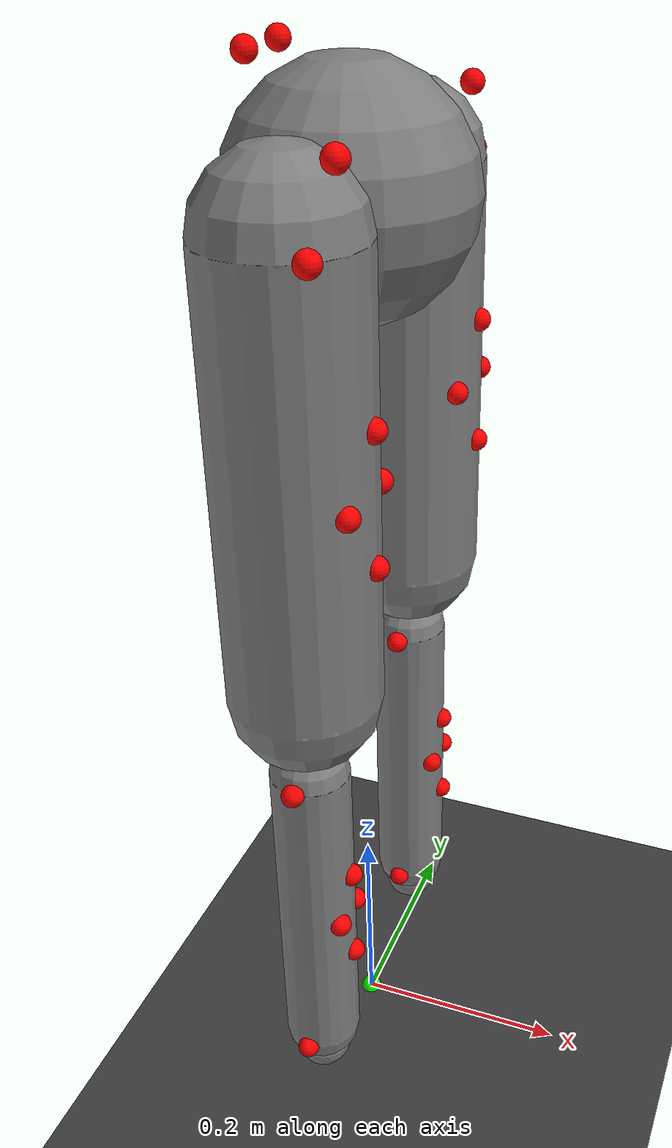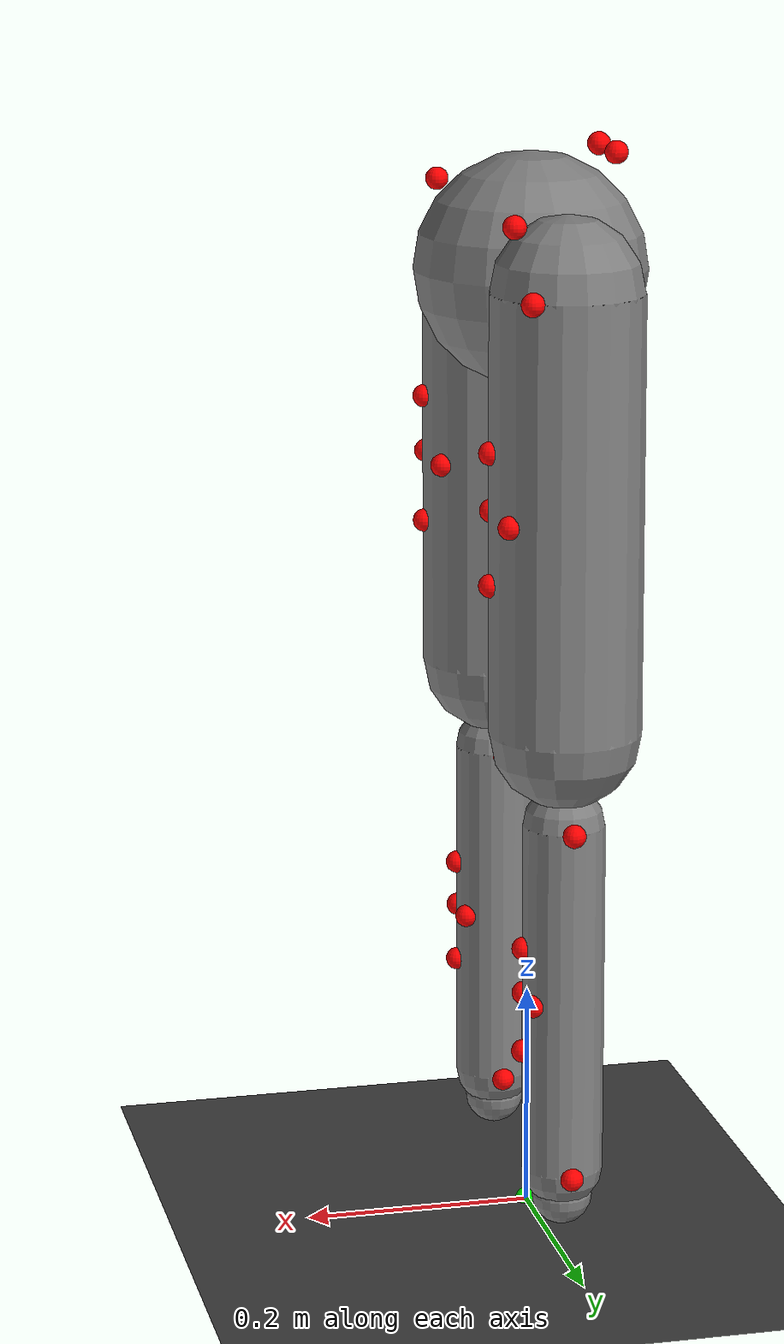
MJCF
<mujoco model="pm_mll">
  <compiler settotalmass="50.0"/>
  <default>
    <default class="/"/>
    <default class="left_leg/"/>
    <default class="right_leg/"/>
  </default>
  <asset>
    <texture name="texplane" type="2d" builtin="checker" rgb1="0.20000000000000001 0.20000000000000001 0.20000000000000001" rgb2="0.29999999999999999 0.29999999999999999 0.29999999999999999" width="512" height="512"/>
    <material name="grid" class="/" texture="texplane" texrepeat="1 1" texuniform="true" reflectance="0.0"/>
  </asset>
  <worldbody>
    <geom name="floor" class="/" type="plane" conaffinity="1" size="100 100 0.20000000000000001" material="grid" pos="0 0 0"/>
    <body name="torso" pos="0 0 0.84581186855799162">
      <light name="top" class="/" mode="trackcom" pos="0 0 2"/>
      <camera name="back" class="/" mode="trackcom" pos="-3 0 1" xyaxes="0 -1 0 1 0 2"/>
      <camera name="side" class="/" mode="trackcom" pos="0 -3 1" xyaxes="1 0 0 0 1 2"/>
      <joint armature="0" axis="1 0 0" damping="0" limited="false" name="rootx" pos="0 0 0" stiffness="0" type="slide"/>
      <joint armature="0" axis="0 0 1" damping="0" limited="false" name="rootz" pos="0 0 0" stiffness="0" type="slide"/>
      <joint armature="0" axis="0 1 0" damping="0" limited="false" name="rooty" pos="0 0 0" stiffness="0" type="hinge"/>
      <geom name="head" class="/" type="sphere" size="0.10000000000000001" pos="0 0 0"/>
      <site name="com" class="/" type="sphere" rgba="1 0 0 1" size="0.01" pos="0 0 0"/>
      <camera name="egocentric" class="/" fovy="80.0" pos="0.089999999999999997 0 0" xyaxes="0 -1 0 0.10000000000000001 1 2"/>
      <site name="RASI" class="/" type="sphere" rgba="1 0 0 1" size="0.01" pos="0.048943999880708008 -0.14004190747163026 0.057850884871788529"/>
      <site name="LASI" class="/" type="sphere" rgba="1 0 0 1" size="0.01" pos="0.048943999880708008 0.14004190747163026 0.057850884871788529"/>
      <site name="RPSI" class="/" type="sphere" rgba="1 0 0 1" size="0.01" pos="-0.066488008791476927 -0.028008381494326055 0.0996938565740315"/>
      <site name="LPSI" class="/" type="sphere" rgba="1 0 0 1" size="0.01" pos="-0.066488008791476927 0.028008381494326055 0.0996938565740315"/>
      <site name="left_leg_site" class="/" size="9.9999999999999995e-07 9.9999999999999995e-07 9.9999999999999995e-07" pos="0 0.12336127164775351 0"/>
      <body pos="0 0.12336127164775351 0" name="left_leg/">
        <body name="left_leg/thigh">
          <joint name="left_leg/hip_x" class="left_leg/" type="hinge" axis="1 0 0" limited="true" solimplimit="0 0.98999999999999999 0.01" range="-25 5"/>
          <joint name="left_leg/hip_y" class="left_leg/" type="hinge" axis="0 1 0" limited="true" solimplimit="0 0.98999999999999999 0.01" range="-110 20"/>
          <geom name="left_leg/thigh" class="left_leg/" type="capsule" size="0.064800587918351138" mass="1e-06" fromto="0 0 0 0 0 -0.37368460417967581"/>
          <site name="left_leg/LGT" class="left_leg/" type="sphere" rgba="1 0 0 1" size="0.01" pos="0.041653015014319367 0.049640130285695673 0"/>
          <site name="left_leg/LT1" class="left_leg/" type="sphere" rgba="1 0 0 1" size="0.01" pos="0.064800587918351138 0 -0.13078961146288653"/>
          <site name="left_leg/LT2" class="left_leg/" type="sphere" rgba="1 0 0 1" size="0.01" pos="0.056118955317459064 0.032400293959175562 -0.1868423020898379"/>
          <site name="left_leg/LT3" class="left_leg/" type="sphere" rgba="1 0 0 1" size="0.01" pos="0.064800587918351138 0 -0.24289499271678927"/>
          <site name="left_leg/LT4" class="left_leg/" type="sphere" rgba="1 0 0 1" size="0.01" pos="0.056118955317459064 -0.032400293959175562 -0.1868423020898379"/>
          <body name="left_leg/shin" pos="0 0 -0.45493333095078076">
            <joint name="left_leg/knee" class="left_leg/" type="hinge" pos="0 0 0.02" axis="0 -1 0" limited="true" solimplimit="0 0.98999999999999999 0.01" stiffness="0.0" range="-160 2" armature="0.01" damping="0.0"/>
            <geom name="left_leg/shin" class="left_leg/" type="capsule" size="0.035119856339967746" mass="1e-06" fromto="0 0 0 0 0 -0.30955686011002925"/>
            <site name="left_leg/LKNL" class="left_leg/" type="sphere" rgba="1 0 0 1" size="0.01" pos="2.1504709826628188e-18 0.035119856339967746 0"/>
            <site name="left_leg/LKNM" class="left_leg/" type="sphere" rgba="1 0 0 1" size="0.01" pos="-6.4514129479884569e-18 -0.035119856339967746 0"/>
            <site name="left_leg/LS1" class="left_leg/" type="sphere" rgba="1 0 0 1" size="0.01" pos="0.035119856339967746 0 -0.10834490103851024"/>
            <site name="left_leg/LS2" class="left_leg/" type="sphere" rgba="1 0 0 1" size="0.01" pos="0.030414687767672047 0.01755992816998387 -0.15477843005501463"/>
            <site name="left_leg/LS3" class="left_leg/" type="sphere" rgba="1 0 0 1" size="0.01" pos="0.035119856339967746 0 -0.20121195907151901"/>
            <site name="left_leg/LS4" class="left_leg/" type="sphere" rgba="1 0 0 1" size="0.01" pos="0.030414687767672047 -0.01755992816998387 -0.15477843005501463"/>
            <site name="left_leg/LANL" class="left_leg/" type="sphere" rgba="1 0 0 1" size="0.01" pos="2.1504709826628188e-18 0.035119856339967746 -0.30955686011002925"/>
            <site name="left_leg/LANM" class="left_leg/" type="sphere" rgba="1 0 0 1" size="0.01" pos="-6.4514129479884569e-18 -0.035119856339967746 -0.30955686011002925"/>
            <body name="left_leg/foot" pos="0 0 -0.33570141974336248">
              <geom name="left_leg/foot" class="left_leg/" type="sphere" size="0.026144559633333252" mass="0.1" pos="0 0 0"/>
              <site name="left_leg/foot" class="left_leg/" type="sphere" rgba="1 0 0 1" size="0.01" pos="0 0 0"/>
            </body>
          </body>
        </body>
      </body>
      <site name="right_leg_site" class="/" size="9.9999999999999995e-07 9.9999999999999995e-07 9.9999999999999995e-07" pos="0 -0.12336127164775351 0"/>
      <body pos="0 -0.12336127164775351 0" name="right_leg/">
        <body name="right_leg/thigh">
          <joint name="right_leg/hip_x" class="right_leg/" type="hinge" axis="1 0 0" limited="true" solimplimit="0 0.98999999999999999 0.01" range="-25 5"/>
          <joint name="right_leg/hip_y" class="right_leg/" type="hinge" axis="0 1 0" limited="true" solimplimit="0 0.98999999999999999 0.01" range="-110 20"/>
          <geom name="right_leg/thigh" class="right_leg/" type="capsule" size="0.064800587918351138" mass="1e-06" fromto="0 0 0 0 0 -0.37368460417967581"/>
          <site name="right_leg/RGT" class="right_leg/" type="sphere" rgba="1 0 0 1" size="0.01" pos="0.04165301501431936 -0.04964013028569568 0"/>
          <site name="right_leg/RT1" class="right_leg/" type="sphere" rgba="1 0 0 1" size="0.01" pos="0.064800587918351138 0 -0.13078961146288653"/>
          <site name="right_leg/RT2" class="right_leg/" type="sphere" rgba="1 0 0 1" size="0.01" pos="0.056118955317459064 0.032400293959175562 -0.1868423020898379"/>
          <site name="right_leg/RT3" class="right_leg/" type="sphere" rgba="1 0 0 1" size="0.01" pos="0.064800587918351138 0 -0.24289499271678927"/>
          <site name="right_leg/RT4" class="right_leg/" type="sphere" rgba="1 0 0 1" size="0.01" pos="0.056118955317459064 -0.032400293959175562 -0.1868423020898379"/>
          <body name="right_leg/shin" pos="0 0 -0.45493333095078076">
            <joint name="right_leg/knee" class="right_leg/" type="hinge" pos="0 0 0.02" axis="0 -1 0" limited="true" solimplimit="0 0.98999999999999999 0.01" stiffness="0.0" range="-160 2" armature="0.01" damping="0.0"/>
            <geom name="right_leg/shin" class="right_leg/" type="capsule" size="0.035119856339967746" mass="1e-06" fromto="0 0 0 0 0 -0.30955686011002925"/>
            <site name="right_leg/RKNL" class="right_leg/" type="sphere" rgba="1 0 0 1" size="0.01" pos="-6.4514129479884569e-18 -0.035119856339967746 0"/>
            <site name="right_leg/RKNM" class="right_leg/" type="sphere" rgba="1 0 0 1" size="0.01" pos="2.1504709826628188e-18 0.035119856339967746 0"/>
            <site name="right_leg/RS1" class="right_leg/" type="sphere" rgba="1 0 0 1" size="0.01" pos="0.035119856339967746 0 -0.10834490103851024"/>
            <site name="right_leg/RS2" class="right_leg/" type="sphere" rgba="1 0 0 1" size="0.01" pos="0.030414687767672047 0.01755992816998387 -0.15477843005501463"/>
            <site name="right_leg/RS3" class="right_leg/" type="sphere" rgba="1 0 0 1" size="0.01" pos="0.035119856339967746 0 -0.20121195907151901"/>
            <site name="right_leg/RS4" class="right_leg/" type="sphere" rgba="1 0 0 1" size="0.01" pos="0.030414687767672047 -0.01755992816998387 -0.15477843005501463"/>
            <site name="right_leg/RANL" class="right_leg/" type="sphere" rgba="1 0 0 1" size="0.01" pos="2.1504709826628188e-18 0.035119856339967746 -0.30955686011002925"/>
            <site name="right_leg/RANM" class="right_leg/" type="sphere" rgba="1 0 0 1" size="0.01" pos="-6.4514129479884569e-18 -0.035119856339967746 -0.30955686011002925"/>
            <body name="right_leg/foot" pos="0 0 -0.33570141974336248">
              <geom name="right_leg/foot" class="right_leg/" type="sphere" size="0.026144559633333252" mass="0.1" pos="0 0 0"/>
              <site name="right_leg/foot" class="right_leg/" type="sphere" rgba="1 0 0 1" size="0.01" pos="0 0 0"/>
            </body>
          </body>
        </body>
      </body>
    </body>
    <body name="m0" mocap="true" pos="0 0 0">
      <geom name="m0" class="/" type="sphere" size="0.01" rgba="0 1 0 1" mass="0.0"/>
    </body>
    <body name="m1" mocap="true" pos="0 0 0">
      <geom name="m1" class="/" type="sphere" size="0.01" rgba="0 1 0 1" mass="0.0"/>
    </body>
    <body name="m2" mocap="true" pos="0 0 0">
      <geom name="m2" class="/" type="sphere" size="0.01" rgba="0 1 0 1" mass="0.0"/>
    </body>
    <body name="m3" mocap="true" pos="0 0 0">
      <geom name="m3" class="/" type="sphere" size="0.01" rgba="0 1 0 1" mass="0.0"/>
    </body>
    <body name="m4" mocap="true" pos="0 0 0">
      <geom name="m4" class="/" type="sphere" size="0.01" rgba="0 1 0 1" mass="0.0"/>
    </body>
    <body name="m5" mocap="true" pos="0 0 0">
      <geom name="m5" class="/" type="sphere" size="0.01" rgba="0 1 0 1" mass="0.0"/>
    </body>
    <body name="m6" mocap="true" pos="0 0 0">
      <geom name="m6" class="/" type="sphere" size="0.01" rgba="0 1 0 1" mass="0.0"/>
    </body>
    <body name="m7" mocap="true" pos="0 0 0">
      <geom name="m7" class="/" type="sphere" size="0.01" rgba="0 1 0 1" mass="0.0"/>
    </body>
    <body name="m8" mocap="true" pos="0 0 0">
      <geom name="m8" class="/" type="sphere" size="0.01" rgba="0 1 0 1" mass="0.0"/>
    </body>
    <body name="m9" mocap="true" pos="0 0 0">
      <geom name="m9" class="/" type="sphere" size="0.01" rgba="0 1 0 1" mass="0.0"/>
    </body>
    <body name="m10" mocap="true" pos="0 0 0">
      <geom name="m10" class="/" type="sphere" size="0.01" rgba="0 1 0 1" mass="0.0"/>
    </body>
    <body name="m11" mocap="true" pos="0 0 0">
      <geom name="m11" class="/" type="sphere" size="0.01" rgba="0 1 0 1" mass="0.0"/>
    </body>
    <body name="m12" mocap="true" pos="0 0 0">
      <geom name="m12" class="/" type="sphere" size="0.01" rgba="0 1 0 1" mass="0.0"/>
    </body>
    <body name="m13" mocap="true" pos="0 0 0">
      <geom name="m13" class="/" type="sphere" size="0.01" rgba="0 1 0 1" mass="0.0"/>
    </body>
    <body name="m14" mocap="true" pos="0 0 0">
      <geom name="m14" class="/" type="sphere" size="0.01" rgba="0 1 0 1" mass="0.0"/>
    </body>
    <body name="m15" mocap="true" pos="0 0 0">
      <geom name="m15" class="/" type="sphere" size="0.01" rgba="0 1 0 1" mass="0.0"/>
    </body>
    <body name="m16" mocap="true" pos="0 0 0">
      <geom name="m16" class="/" type="sphere" size="0.01" rgba="0 1 0 1" mass="0.0"/>
    </body>
    <body name="m17" mocap="true" pos="0 0 0">
      <geom name="m17" class="/" type="sphere" size="0.01" rgba="0 1 0 1" mass="0.0"/>
    </body>
    <body name="m18" mocap="true" pos="0 0 0">
      <geom name="m18" class="/" type="sphere" size="0.01" rgba="0 1 0 1" mass="0.0"/>
    </body>
    <body name="m19" mocap="true" pos="0 0 0">
      <geom name="m19" class="/" type="sphere" size="0.01" rgba="0 1 0 1" mass="0.0"/>
    </body>
    <body name="m20" mocap="true" pos="0 0 0">
      <geom name="m20" class="/" type="sphere" size="0.01" rgba="0 1 0 1" mass="0.0"/>
    </body>
    <body name="m21" mocap="true" pos="0 0 0">
      <geom name="m21" class="/" type="sphere" size="0.01" rgba="0 1 0 1" mass="0.0"/>
    </body>
    <body name="m22" mocap="true" pos="0 0 0">
      <geom name="m22" class="/" type="sphere" size="0.01" rgba="0 1 0 1" mass="0.0"/>
    </body>
    <body name="m23" mocap="true" pos="0 0 0">
      <geom name="m23" class="/" type="sphere" size="0.01" rgba="0 1 0 1" mass="0.0"/>
    </body>
    <body name="m24" mocap="true" pos="0 0 0">
      <geom name="m24" class="/" type="sphere" size="0.01" rgba="0 1 0 1" mass="0.0"/>
    </body>
    <body name="m25" mocap="true" pos="0 0 0">
      <geom name="m25" class="/" type="sphere" size="0.01" rgba="0 1 0 1" mass="0.0"/>
    </body>
    <body name="m26" mocap="true" pos="0 0 0">
      <geom name="m26" class="/" type="sphere" size="0.01" rgba="0 1 0 1" mass="0.0"/>
    </body>
    <body name="m27" mocap="true" pos="0 0 0">
      <geom name="m27" class="/" type="sphere" size="0.01" rgba="0 1 0 1" mass="0.0"/>
    </body>
    <body name="m28" mocap="true" pos="0 0 0">
      <geom name="m28" class="/" type="sphere" size="0.01" rgba="0 1 0 1" mass="0.0"/>
    </body>
    <body name="m29" mocap="true" pos="0 0 0">
      <geom name="m29" class="/" type="sphere" size="0.01" rgba="0 1 0 1" mass="0.0"/>
    </body>
    <body name="m30" mocap="true" pos="0 0 0">
      <geom name="m30" class="/" type="sphere" size="0.01" rgba="0 1 0 1" mass="0.0"/>
    </body>
    <body name="m31" mocap="true" pos="0 0 0">
      <geom name="m31" class="/" type="sphere" size="0.01" rgba="0 1 0 1" mass="0.0"/>
    </body>
    <body name="m32" mocap="true" pos="0 0 0">
      <geom name="m32" class="/" type="sphere" size="0.01" rgba="0 1 0 1" mass="0.0"/>
    </body>
    <body name="m33" mocap="true" pos="0 0 0">
      <geom name="m33" class="/" type="sphere" size="0.01" rgba="0 1 0 1" mass="0.0"/>
    </body>
    <body name="m34" mocap="true" pos="0 0 0">
      <geom name="m34" class="/" type="sphere" size="0.01" rgba="0 1 0 1" mass="0.0"/>
    </body>
    <body name="m35" mocap="true" pos="0 0 0">
      <geom name="m35" class="/" type="sphere" size="0.01" rgba="0 1 0 1" mass="0.0"/>
    </body>
    <body name="m36" mocap="true" pos="0 0 0">
      <geom name="m36" class="/" type="sphere" size="0.01" rgba="0 1 0 1" mass="0.0"/>
    </body>
    <body name="m37" mocap="true" pos="0 0 0">
      <geom name="m37" class="/" type="sphere" size="0.01" rgba="0 1 0 1" mass="0.0"/>
    </body>
    <body name="m38" mocap="true" pos="0 0 0">
      <geom name="m38" class="/" type="sphere" size="0.01" rgba="0 1 0 1" mass="0.0"/>
    </body>
    <body name="m39" mocap="true" pos="0 0 0">
      <geom name="m39" class="/" type="sphere" size="0.01" rgba="0 1 0 1" mass="0.0"/>
    </body>
  </worldbody>
  <equality>
    <weld name="world_root" class="/" active="false" body1="torso" relpose="0 0 -2 1 0 0 0"/>
  </equality>
  <actuator>
    <motor name="left_leg/hip_x" class="left_leg/" joint="left_leg/hip_x"/>
    <motor name="left_leg/hip_y" class="left_leg/" joint="left_leg/hip_y"/>
    <motor name="left_leg/knee" class="left_leg/" joint="left_leg/knee"/>
    <motor name="right_leg/hip_x" class="right_leg/" joint="right_leg/hip_x"/>
    <motor name="right_leg/hip_y" class="right_leg/" joint="right_leg/hip_y"/>
    <motor name="right_leg/knee" class="right_leg/" joint="right_leg/knee"/>
  </actuator>
</mujoco>
